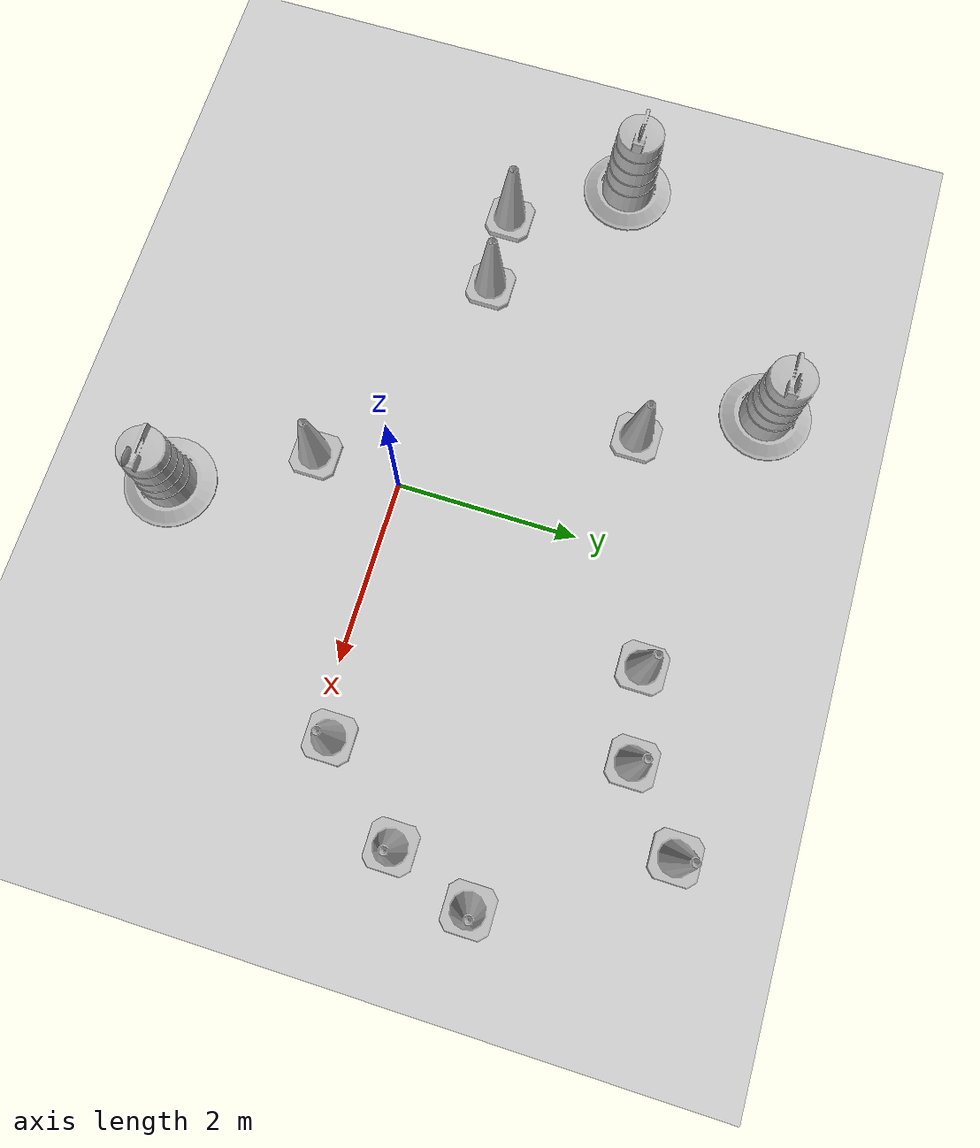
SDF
<sdf version="1.7">
 <world name="default">
  <light name="sun" type="directional">
   <pose>0 0 10 0 -0 0</pose>
   <diffuse>0.8 0.8 0.8 1</diffuse>
   <specular>0.2 0.2 0.2 1</specular>
   <attenuation>
    <range>1000</range>
    <constant>0.9</constant>
    <linear>0.01</linear>
    <quadratic>0.001</quadratic>
   </attenuation>
   <direction>-0.5 0.1 -0.9</direction>
   <spot><inner_angle>0</inner_angle><outer_angle>0</outer_angle><falloff>0</falloff></spot>
  </light>
  <model name="ground_plane">
   <static>1</static>
   <link name="link">
    <collision name="collision">
     <geometry><plane><normal>0 0 1</normal><size>100 100</size></plane></geometry>
     <surface>
      <contact><collide_bitmask>65535</collide_bitmask></contact>
      <friction><ode><mu>100</mu><mu2>50</mu2></ode></friction>
     </surface>
    </collision>
    <visual name="visual">
     <cast_shadows>0</cast_shadows>
     <geometry><plane><normal>0 0 1</normal><size>100 100</size></plane></geometry>
     <material>
      <script><uri>file://media/materials/scripts/gazebo.material</uri><name>Gazebo/Grey</name></script>
     </material>
    </visual>
   </link>
  </model>
  <gravity>0 0 -9.8</gravity>
  <magnetic_field>6e-06 2.3e-05 -4.2e-05</magnetic_field>
  <atmosphere type="adiabatic"/>
  <physics type="ode">
   <max_step_size>0.001</max_step_size>
   <real_time_factor>1</real_time_factor>
   <real_time_update_rate>1000</real_time_update_rate>
  </physics>
  <scene><ambient>0.4 0.4 0.4 1</ambient><background>0.7 0.7 0.7 1</background><shadows>1</shadows></scene>
  <spherical_coordinates>
   <surface_model>EARTH_WGS84</surface_model>
   <latitude_deg>0</latitude_deg>
   <longitude_deg>0</longitude_deg>
   <elevation>0</elevation>
   <heading_deg>0</heading_deg>
  </spherical_coordinates>
  <model name="Construction Cone">
   <link name="link">
    <collision name="collision">
     <geometry>
      <mesh><scale>10 10 10</scale><uri>model://construction_cone/meshes/construction_cone.dae</uri></mesh>
     </geometry>
    </collision>
    <visual name="visual">
     <geometry>
      <mesh><scale>10 10 10</scale><uri>model://construction_cone/meshes/construction_cone.dae</uri></mesh>
     </geometry>
    </visual>
    <inertial>
     <inertia><ixx>1</ixx><ixy>0</ixy><ixz>0</ixz><iyy>1</iyy><iyz>0</iyz><izz>1</izz></inertia>
     <mass>1</mass>
    </inertial>
   </link>
   <pose>-0.05895 -0.965221 -0 0 -0 0</pose>
  </model>
  <model name="Construction Cone_0">
   <link name="link">
    <collision name="collision">
     <geometry>
      <mesh><scale>10 10 10</scale><uri>model://construction_cone/meshes/construction_cone.dae</uri></mesh>
     </geometry>
    </collision>
    <visual name="visual">
     <geometry>
      <mesh><scale>10 10 10</scale><uri>model://construction_cone/meshes/construction_cone.dae</uri></mesh>
     </geometry>
    </visual>
    <inertial>
     <inertia><ixx>1</ixx><ixy>0</ixy><ixz>0</ixz><iyy>1</iyy><iyz>0</iyz><izz>1</izz></inertia>
     <mass>1</mass>
    </inertial>
   </link>
   <pose>-1.26808 2.33196 -0 0 -0 0</pose>
  </model>
  <model name="Construction Cone_1">
   <link name="link">
    <collision name="collision">
     <geometry>
      <mesh><scale>10 10 10</scale><uri>model://construction_cone/meshes/construction_cone.dae</uri></mesh>
     </geometry>
    </collision>
    <visual name="visual">
     <geometry>
      <mesh><scale>10 10 10</scale><uri>model://construction_cone/meshes/construction_cone.dae</uri></mesh>
     </geometry>
    </visual>
    <inertial>
     <inertia><ixx>1</ixx><ixy>0</ixy><ixz>0</ixz><iyy>1</iyy><iyz>0</iyz><izz>1</izz></inertia>
     <mass>1</mass>
    </inertial>
   </link>
   <pose>1.1443 3.02546 -0 0 -0 0</pose>
  </model>
  <model name="Construction Cone_2">
   <link name="link">
    <collision name="collision">
     <geometry>
      <mesh><scale>10 10 10</scale><uri>model://construction_cone/meshes/construction_cone.dae</uri></mesh>
     </geometry>
    </collision>
    <visual name="visual">
     <geometry>
      <mesh><scale>10 10 10</scale><uri>model://construction_cone/meshes/construction_cone.dae</uri></mesh>
     </geometry>
    </visual>
    <inertial>
     <inertia><ixx>1</ixx><ixy>0</ixy><ixz>0</ixz><iyy>1</iyy><iyz>0</iyz><izz>1</izz></inertia>
     <mass>1</mass>
    </inertial>
   </link>
   <pose>-2.54982 0.278886 -1e-05 0 -0 0</pose>
  </model>
  <model name="Construction Cone_3">
   <link name="link">
    <collision name="collision">
     <geometry>
      <mesh><scale>10 10 10</scale><uri>model://construction_cone/meshes/construction_cone.dae</uri></mesh>
     </geometry>
    </collision>
    <visual name="visual">
     <geometry>
      <mesh><scale>10 10 10</scale><uri>model://construction_cone/meshes/construction_cone.dae</uri></mesh>
     </geometry>
    </visual>
    <inertial>
     <inertia><ixx>1</ixx><ixy>0</ixy><ixz>0</ixz><iyy>1</iyy><iyz>0</iyz><izz>1</izz></inertia>
     <mass>1</mass>
    </inertial>
   </link>
   <pose>2.75524 0.162983 0 -0 -0 -0</pose>
  </model>
  <model name="Construction Cone_4">
   <link name="link">
    <collision name="collision">
     <geometry>
      <mesh><scale>10 10 10</scale><uri>model://construction_cone/meshes/construction_cone.dae</uri></mesh>
     </geometry>
    </collision>
    <visual name="visual">
     <geometry>
      <mesh><scale>10 10 10</scale><uri>model://construction_cone/meshes/construction_cone.dae</uri></mesh>
     </geometry>
    </visual>
    <inertial>
     <inertia><ixx>1</ixx><ixy>0</ixy><ixz>0</ixz><iyy>1</iyy><iyz>0</iyz><izz>1</izz></inertia>
     <mass>1</mass>
    </inertial>
   </link>
   <pose>3.57946 1.08996 -0 -0 -0 -0</pose>
  </model>
  <model name="Construction Cone_5">
   <link name="link">
    <collision name="collision">
     <geometry>
      <mesh><scale>10 10 10</scale><uri>model://construction_cone/meshes/construction_cone.dae</uri></mesh>
     </geometry>
    </collision>
    <visual name="visual">
     <geometry>
      <mesh><scale>10 10 10</scale><uri>model://construction_cone/meshes/construction_cone.dae</uri></mesh>
     </geometry>
    </visual>
    <inertial>
     <inertia><ixx>1</ixx><ixy>0</ixy><ixz>0</ixz><iyy>1</iyy><iyz>0</iyz><izz>1</izz></inertia>
     <mass>1</mass>
    </inertial>
   </link>
   <pose>3.91721 1.99448 -0 0 -1e-06 0</pose>
  </model>
  <model name="Construction Cone_6">
   <link name="link">
    <collision name="collision">
     <geometry>
      <mesh><scale>10 10 10</scale><uri>model://construction_cone/meshes/construction_cone.dae</uri></mesh>
     </geometry>
    </collision>
    <visual name="visual">
     <geometry>
      <mesh><scale>10 10 10</scale><uri>model://construction_cone/meshes/construction_cone.dae</uri></mesh>
     </geometry>
    </visual>
    <inertial>
     <inertia><ixx>1</ixx><ixy>0</ixy><ixz>0</ixz><iyy>1</iyy><iyz>0</iyz><izz>1</izz></inertia>
     <mass>1</mass>
    </inertial>
   </link>
   <pose>2.10083 3.17049 -0 0 -0 0</pose>
  </model>
  <model name="Construction Cone_7">
   <link name="link">
    <collision name="collision">
     <geometry>
      <mesh><scale>10 10 10</scale><uri>model://construction_cone/meshes/construction_cone.dae</uri></mesh>
     </geometry>
    </collision>
    <visual name="visual">
     <geometry>
      <mesh><scale>10 10 10</scale><uri>model://construction_cone/meshes/construction_cone.dae</uri></mesh>
     </geometry>
    </visual>
    <inertial>
     <inertia><ixx>1</ixx><ixy>0</ixy><ixz>0</ixz><iyy>1</iyy><iyz>0</iyz><izz>1</izz></inertia>
     <mass>1</mass>
    </inertial>
   </link>
   <pose>2.85638 3.8106 -0 0 -0 0</pose>
  </model>
  <model name="Construction Cone_8">
   <link name="link">
    <collision name="collision">
     <geometry>
      <mesh><scale>10 10 10</scale><uri>model://construction_cone/meshes/construction_cone.dae</uri></mesh>
     </geometry>
    </collision>
    <visual name="visual">
     <geometry>
      <mesh><scale>10 10 10</scale><uri>model://construction_cone/meshes/construction_cone.dae</uri></mesh>
     </geometry>
    </visual>
    <inertial>
     <inertia><ixx>1</ixx><ixy>0</ixy><ixz>0</ixz><iyy>1</iyy><iyz>0</iyz><izz>1</izz></inertia>
     <mass>1</mass>
    </inertial>
   </link>
   <pose>-3.43764 0.249888 -0 0 -1e-06 0</pose>
  </model>
  <model name="Construction Barrel">
   <link name="link">
    <inertial>
     <pose>0 0 0.4 0 -0 0</pose>
     <mass>500</mass>
     <inertia><ixx>51.2096</ixx><iyy>51.2096</iyy><izz>25</izz><ixy>0</ixy><ixz>0</ixz><iyz>0</iyz></inertia>
    </inertial>
    <collision name="collision">
     <geometry><mesh><uri>model://construction_barrel/meshes/construction_barrel.dae</uri></mesh></geometry>
    </collision>
    <visual name="visual">
     <geometry><mesh><uri>model://construction_barrel/meshes/construction_barrel.dae</uri></mesh></geometry>
    </visual>
   </link>
   <pose>-1.92945 3.63266 2e-06 2e-06 4e-06 -8e-06</pose>
  </model>
  <model name="Construction Barrel_0">
   <link name="link">
    <inertial>
     <pose>0 0 0.4 0 -0 0</pose>
     <mass>500</mass>
     <inertia><ixx>51.2096</ixx><iyy>51.2096</iyy><izz>25</izz><ixy>0</ixy><ixz>0</ixz><iyz>0</iyz></inertia>
    </inertial>
    <collision name="collision">
     <geometry><mesh><uri>model://construction_barrel/meshes/construction_barrel.dae</uri></mesh></geometry>
    </collision>
    <visual name="visual">
     <geometry><mesh><uri>model://construction_barrel/meshes/construction_barrel.dae</uri></mesh></geometry>
    </visual>
   </link>
   <pose>-4.19894 1.45831 -2e-06 8e-06 -4e-06 -7e-06</pose>
  </model>
  <model name="Construction Barrel_1">
   <link name="link">
    <inertial>
     <pose>0 0 0.4 0 -0 0</pose>
     <mass>500</mass>
     <inertia><ixx>51.2096</ixx><iyy>51.2096</iyy><izz>25</izz><ixy>0</ixy><ixz>0</ixz><iyz>0</iyz></inertia>
    </inertial>
    <collision name="collision">
     <geometry><mesh><uri>model://construction_barrel/meshes/construction_barrel.dae</uri></mesh></geometry>
    </collision>
    <visual name="visual">
     <geometry><mesh><uri>model://construction_barrel/meshes/construction_barrel.dae</uri></mesh></geometry>
    </visual>
   </link>
   <pose>0.690909 -2.38034 0 0 0 -4e-06</pose>
  </model>
 </world>
</sdf>
